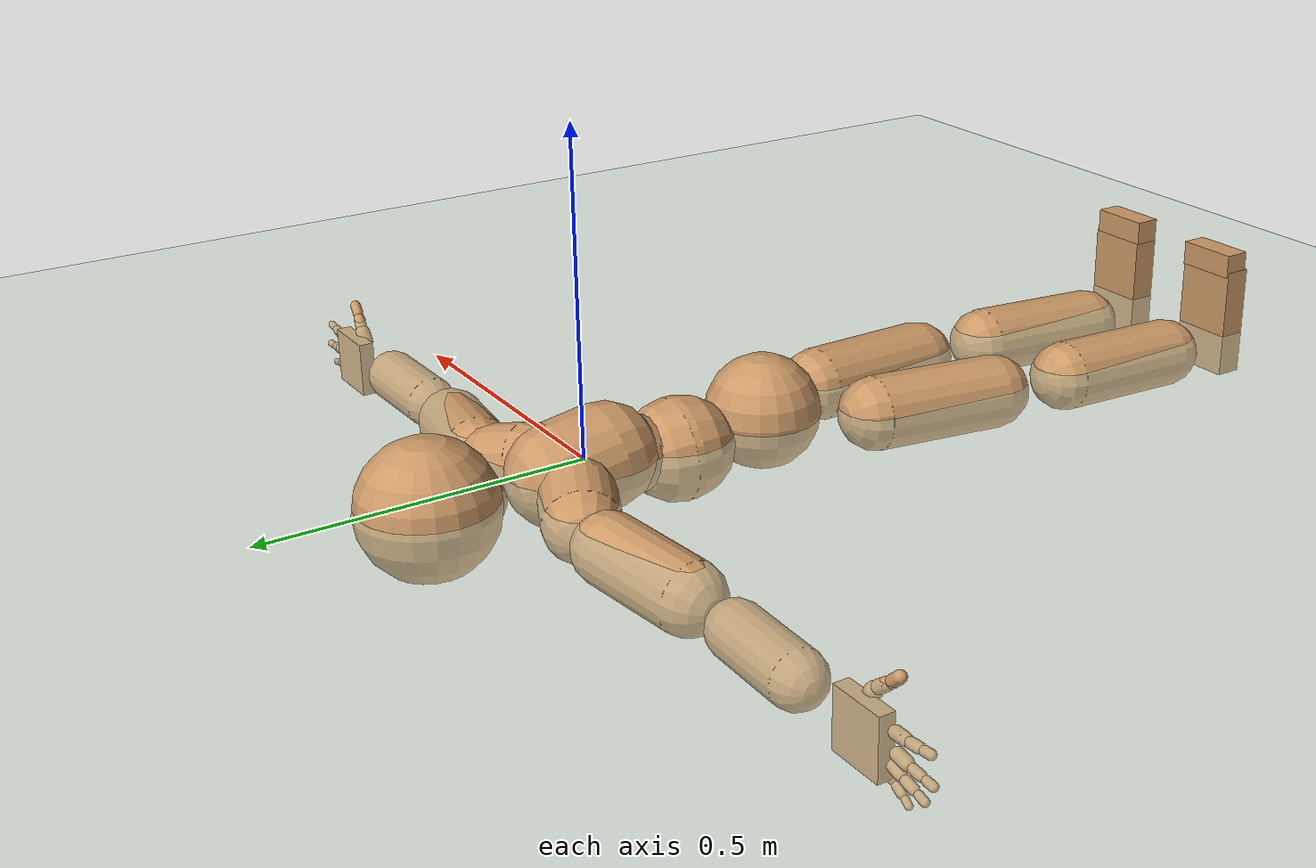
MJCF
<?xml version='1.0' encoding='utf-8'?>
<mujoco model="smplx_mapped_s110">
  <compiler coordinate="local" />
  <default>
    <joint damping="0.0" armature="0.01" stiffness="0.0" limited="true" />
    <geom conaffinity="1" condim="3" contype="7" margin="0.001" rgba="0.8 0.6 .4 1" />
  </default>
  <asset>
    <texture type="skybox" builtin="gradient" rgb1=".4 .5 .6" rgb2="0 0 0" width="100" height="100" />
    <texture builtin="flat" height="1278" mark="cross" markrgb="1 1 1" name="texgeom" random="0.01" rgb1="0.8 0.6 0.4" rgb2="0.8 0.6 0.4" type="cube" width="127" />
    <texture builtin="checker" height="100" name="texplane" rgb1="0 0 0" rgb2="0.8 0.8 0.8" type="2d" width="100" />
    <material name="MatPlane" reflectance="0.5" shininess="1" specular="1" texrepeat="60 60" texture="texplane" />
    <material name="geom" texture="texgeom" texuniform="true" />
  </asset>
  <worldbody>
    <light cutoff="100" diffuse="1 1 1" dir="-0 0 -1.3" directional="true" exponent="1" pos="0 0 1.3" specular=".1 .1 .1" />
    <geom conaffinity="1" condim="3" name="floor" pos="0 0 0" rgba="0.8 0.9 0.8 1" size="100 100 .2" type="plane" material="MatPlane" />
    <body name="Pelvis" pos="0.0006 -0.3115 0.0031">
      <freejoint name="Pelvis" />
      <geom type="sphere" contype="1" conaffinity="1" density="4629.6296296296305" size="0.09" pos="0.0000 0.0000 0.0000" name="Pelvis" />
      <body name="L_Hip" pos="0.0666 -0.0820 -0.0142">
        <joint name="L_Hip_x" type="hinge" pos="0 0 0" axis="1 0 0" stiffness="800" damping="80" armature="0.02" range="-180.00 180.00" />
        <joint name="L_Hip_y" type="hinge" pos="0 0 0" axis="0 1 0" stiffness="800" damping="80" armature="0.02" range="-180.00 180.00" />
        <joint name="L_Hip_z" type="hinge" pos="0 0 0" axis="0 0 1" stiffness="800" damping="80" armature="0.02" range="-180.00 180.00" />
        <geom type="capsule" contype="1" conaffinity="1" density="2040.816327" fromto="0.0071 -0.0730 -0.0027 0.0285 -0.2921 -0.0109" size="0.059" />
        <body name="L_Knee" pos="0.0357 -0.3652 -0.0136">
          <joint name="L_Knee_x" type="hinge" pos="0 0 0" axis="1 0 0" stiffness="800" damping="80" armature="0.02" range="-180.00 180.00" />
          <joint name="L_Knee_y" type="hinge" pos="0 0 0" axis="0 1 0" stiffness="800" damping="80" armature="0.02" range="-180.00 180.00" />
          <joint name="L_Knee_z" type="hinge" pos="0 0 0" axis="0 0 1" stiffness="800" damping="80" armature="0.02" range="-180.00 180.00" />
          <geom type="capsule" contype="1" conaffinity="1" density="1234.567901" fromto="-0.0013 -0.0767 -0.0036 -0.0051 -0.3068 -0.0144" size="0.0564" />
          <body name="L_Ankle" pos="-0.0064 -0.3835 -0.0180">
            <joint name="L_Ankle_x" type="hinge" pos="0 0 0" axis="1 0 0" stiffness="800" damping="80" armature="0.02" range="-180.00 180.00" />
            <joint name="L_Ankle_y" type="hinge" pos="0 0 0" axis="0 1 0" stiffness="800" damping="80" armature="0.02" range="-180.00 180.00" />
            <joint name="L_Ankle_z" type="hinge" pos="0 0 0" axis="0 0 1" stiffness="800" damping="80" armature="0.02" range="-180.00 180.00" />
            <geom type="box" contype="1" conaffinity="1" density="1000" pos="0.0115 -0.0234 0.0566" size="0.0502 0.0216 0.0909" quat="1.0000 0.0000 0.0000 0.0000" />
            <body name="L_Toe" pos="0.0201 -0.0445 0.1067">
              <joint name="L_Toe_x" type="hinge" pos="0 0 0" axis="1 0 0" stiffness="500" damping="50" armature="0.02" range="-180.00 180.00" />
              <joint name="L_Toe_y" type="hinge" pos="0 0 0" axis="0 1 0" stiffness="500" damping="50" armature="0.02" range="-180.00 180.00" />
              <joint name="L_Toe_z" type="hinge" pos="0 0 0" axis="0 0 1" stiffness="500" damping="50" armature="0.02" range="-180.00 180.00" />
              <geom type="box" contype="1" conaffinity="1" density="1000" pos="-0.0115 0.0227 0.0576" size="0.0493 0.0209 0.0194" quat="1.0000 0.0000 0.0000 0.0000" />
            </body>
          </body>
        </body>
      </body>
      <body name="R_Hip" pos="-0.0659 -0.0882 -0.0152">
        <joint name="R_Hip_x" type="hinge" pos="0 0 0" axis="1 0 0" stiffness="800" damping="80" armature="0.02" range="-180.00 180.00" />
        <joint name="R_Hip_y" type="hinge" pos="0 0 0" axis="0 1 0" stiffness="800" damping="80" armature="0.02" range="-180.00 180.00" />
        <joint name="R_Hip_z" type="hinge" pos="0 0 0" axis="0 0 1" stiffness="800" damping="80" armature="0.02" range="-180.00 180.00" />
        <geom type="capsule" contype="1" conaffinity="1" density="2040.816327" fromto="-0.0079 -0.0722 -0.0017 -0.0318 -0.2889 -0.0066" size="0.0588" />
        <body name="R_Knee" pos="-0.0397 -0.3611 -0.0083">
          <joint name="R_Knee_x" type="hinge" pos="0 0 0" axis="1 0 0" stiffness="800" damping="80" armature="0.02" range="-180.00 180.00" />
          <joint name="R_Knee_y" type="hinge" pos="0 0 0" axis="0 1 0" stiffness="800" damping="80" armature="0.02" range="-180.00 180.00" />
          <joint name="R_Knee_z" type="hinge" pos="0 0 0" axis="0 0 1" stiffness="800" damping="80" armature="0.02" range="-180.00 180.00" />
          <geom type="capsule" contype="1" conaffinity="1" density="1234.567901" fromto="0.0004 -0.0750 -0.0027 0.0015 -0.3001 -0.0110" size="0.0564" />
          <body name="R_Ankle" pos="0.0019 -0.3752 -0.0137">
            <joint name="R_Ankle_x" type="hinge" pos="0 0 0" axis="1 0 0" stiffness="800" damping="80" armature="0.02" range="-180.00 180.00" />
            <joint name="R_Ankle_y" type="hinge" pos="0 0 0" axis="0 1 0" stiffness="800" damping="80" armature="0.02" range="-180.00 180.00" />
            <joint name="R_Ankle_z" type="hinge" pos="0 0 0" axis="0 0 1" stiffness="800" damping="80" armature="0.02" range="-180.00 180.00" />
            <geom type="box" contype="1" conaffinity="1" density="1000" pos="-0.0091 -0.0250 0.0535" size="0.0502 0.0216 0.0909" quat="1.0000 0.0000 0.0000 0.0000" />
            <body name="R_Toe" pos="-0.0161 -0.0479 0.1003">
              <joint name="R_Toe_x" type="hinge" pos="0 0 0" axis="1 0 0" stiffness="500" damping="50" armature="0.02" range="-180.00 180.00" />
              <joint name="R_Toe_y" type="hinge" pos="0 0 0" axis="0 1 0" stiffness="500" damping="50" armature="0.02" range="-180.00 180.00" />
              <joint name="R_Toe_z" type="hinge" pos="0 0 0" axis="0 0 1" stiffness="500" damping="50" armature="0.02" range="-180.00 180.00" />
              <geom type="box" contype="1" conaffinity="1" density="1000" pos="0.0091 0.0243 0.0545" size="0.0493 0.0209 0.0194" quat="1.0000 0.0000 0.0000 0.0000" />
            </body>
          </body>
        </body>
      </body>
      <body name="Torso" pos="-0.0053 0.0938 -0.0223">
        <joint name="Torso_x" type="hinge" pos="0 0 0" axis="1 0 0" stiffness="1000" damping="100" armature="0.02" range="-180.00 180.00" />
        <joint name="Torso_y" type="hinge" pos="0 0 0" axis="0 1 0" stiffness="1000" damping="100" armature="0.02" range="-180.00 180.00" />
        <joint name="Torso_z" type="hinge" pos="0 0 0" axis="0 0 1" stiffness="1000" damping="100" armature="0.02" range="-180.00 180.00" />
        <geom type="capsule" contype="1" conaffinity="1" density="1100" fromto="0.0041 0.0518 -0.0026 0.0050 0.0634 -0.0032" size="0.08" />
        <body name="Spine" pos="0.0091 0.1152 -0.0058">
          <joint name="Spine_x" type="hinge" pos="0 0 0" axis="1 0 0" stiffness="1000" damping="100" armature="0.02" range="-180.00 180.00" />
          <joint name="Spine_y" type="hinge" pos="0 0 0" axis="0 1 0" stiffness="1000" damping="100" armature="0.02" range="-180.00 180.00" />
          <joint name="Spine_z" type="hinge" pos="0 0 0" axis="0 0 1" stiffness="1000" damping="100" armature="0.02" range="-180.00 180.00" />
          <geom type="capsule" contype="1" conaffinity="1" density="1100" fromto="-0.0021 0.0197 0.0128 -0.0026 0.0240 0.0156" size="0.06" />
          <body name="Chest" pos="-0.0046 0.0437 0.0284">
            <joint name="Chest_x" type="hinge" pos="0 0 0" axis="1 0 0" stiffness="1000" damping="100" armature="0.02" range="-180.00 180.00" />
            <joint name="Chest_y" type="hinge" pos="0 0 0" axis="0 1 0" stiffness="1000" damping="100" armature="0.02" range="-180.00 180.00" />
            <joint name="Chest_z" type="hinge" pos="0 0 0" axis="0 0 1" stiffness="1000" damping="100" armature="0.02" range="-180.00 180.00" />
            <geom type="capsule" contype="1" conaffinity="1" density="1100" fromto="-0.0006 0.0256 -0.0038 -0.0023 0.1026 -0.0153" size="0.08" />
            <body name="Neck" pos="-0.0058 0.1764 -0.0304">
              <joint name="Neck_x" type="hinge" pos="0 0 0" axis="1 0 0" stiffness="500" damping="50" armature="0.02" range="-180.00 180.00" />
              <joint name="Neck_y" type="hinge" pos="0 0 0" axis="0 1 0" stiffness="500" damping="50" armature="0.02" range="-180.00 180.00" />
              <joint name="Neck_z" type="hinge" pos="0 0 0" axis="0 0 1" stiffness="500" damping="50" armature="0.02" range="-180.00 180.00" />
              <geom type="capsule" contype="1" conaffinity="1" density="1000" fromto="0.0040 0.0577 0.0061 0.0049 0.0705 0.0075" size="0.0437" />
              <body name="Head" pos="0.0089 0.1281 0.0136">
                <joint name="Head_x" type="hinge" pos="0 0 0" axis="1 0 0" stiffness="500" damping="50" armature="0.02" range="-180.00 180.00" />
                <joint name="Head_y" type="hinge" pos="0 0 0" axis="0 1 0" stiffness="500" damping="50" armature="0.02" range="-180.00 180.00" />
                <joint name="Head_z" type="hinge" pos="0 0 0" axis="0 0 1" stiffness="500" damping="50" armature="0.02" range="-180.00 180.00" />
                <geom type="sphere" contype="1" conaffinity="1" density="1000" size="0.1054" pos="0.0000 0.0000 0.0000" name="Head" />
              </body>
            </body>
            <body name="L_Thorax" pos="0.0512 0.1059 -0.0103">
              <joint name="L_Thorax_x" type="hinge" pos="0 0 0" axis="1 0 0" stiffness="500" damping="50" armature="0.02" range="-180.00 180.00" />
              <joint name="L_Thorax_y" type="hinge" pos="0 0 0" axis="0 1 0" stiffness="500" damping="50" armature="0.02" range="-180.00 180.00" />
              <joint name="L_Thorax_z" type="hinge" pos="0 0 0" axis="0 0 1" stiffness="500" damping="50" armature="0.02" range="-180.00 180.00" />
              <geom type="capsule" contype="1" conaffinity="1" density="1000" fromto="0.0179 0.0081 -0.0053 0.0718 0.0322 -0.0212" size="0.0564" />
              <body name="L_Shoulder" pos="0.0897 0.0403 -0.0265">
                <joint name="L_Shoulder_x" type="hinge" pos="0 0 0" axis="1 0 0" stiffness="500" damping="50" armature="0.02" range="-180.00 180.00" />
                <joint name="L_Shoulder_y" type="hinge" pos="0 0 0" axis="0 1 0" stiffness="500" damping="50" armature="0.02" range="-180.00 180.00" />
                <joint name="L_Shoulder_z" type="hinge" pos="0 0 0" axis="0 0 1" stiffness="500" damping="50" armature="0.02" range="-180.00 180.00" />
                <geom type="capsule" contype="1" conaffinity="1" density="1000" fromto="0.0542 -0.0110 -0.0058 0.2169 -0.0441 -0.0231" size="0.0533" />
                <body name="L_Elbow" pos="0.2711 -0.0552 -0.0289">
                  <joint name="L_Elbow_x" type="hinge" pos="0 0 0" axis="1 0 0" stiffness="500" damping="50" armature="0.02" range="-180.00 180.00" />
                  <joint name="L_Elbow_y" type="hinge" pos="0 0 0" axis="0 1 0" stiffness="500" damping="50" armature="0.02" range="-180.00 180.00" />
                  <joint name="L_Elbow_z" type="hinge" pos="0 0 0" axis="0 0 1" stiffness="500" damping="50" armature="0.02" range="-180.00 180.00" />
                  <geom type="capsule" contype="1" conaffinity="1" density="1000" fromto="0.0457 0.0016 0.0011 0.1827 0.0062 0.0042" size="0.0418" />
                  <body name="L_Wrist" pos="0.252 0.0232 -0.0025">
                    <joint name="L_Wrist_x" type="hinge" pos="0 0 0" axis="1 0 0" stiffness="300" damping="30" armature="0.02" range="-180.0000 180.0000"/>
                    <joint name="L_Wrist_y" type="hinge" pos="0 0 0" axis="0 1 0" stiffness="300" damping="30" armature="0.02" range="-180.0000 180.0000"/>
                    <joint name="L_Wrist_z" type="hinge" pos="0 0 0" axis="0 0 1" stiffness="300" damping="30" armature="0.02" range="-180.0000 180.0000"/>
                    <geom type="box" density="1198.335972" pos="0.0523 -0.0013 -0.0031" size="0.0484 0.0122 0.046" quat="1.0000 0.0000 0.0000 0.0000" name="L_Wrist"/>
                    <body name="L_Index1" pos="0.1019 -0.0087 0.0194">
                      <joint name="L_Index1_x" type="hinge" pos="0 0 0" axis="1 0 0" stiffness="100" damping="10" armature="0.02" range="-180.0000 180.0000"/>
                      <joint name="L_Index1_y" type="hinge" pos="0 0 0" axis="0 1 0" stiffness="100" damping="10" armature="0.02" range="-180.0000 180.0000"/>
                      <joint name="L_Index1_z" type="hinge" pos="0 0 0" axis="0 0 1" stiffness="100" damping="10" armature="0.02" range="-180.0000 180.0000"/>
                      <geom type="capsule" contype="1" conaffinity="1" density="1000" fromto="0.0064 0.0004 0.0006 0.0256 0.0018 0.0024" size="0.0091" name="L_Index1"/>
                      <body name="L_Index2" pos="0.0319 0.0022 0.003">
                        <joint name="L_Index2_x" type="hinge" pos="0 0 0" axis="1 0 0" stiffness="100" damping="10" armature="0.02" range="-180.0000 180.0000"/>
                        <joint name="L_Index2_y" type="hinge" pos="0 0 0" axis="0 1 0" stiffness="100" damping="10" armature="0.02" range="-180.0000 180.0000"/>
                        <joint name="L_Index2_z" type="hinge" pos="0 0 0" axis="0 0 1" stiffness="100" damping="10" armature="0.02" range="-180.0000 180.0000"/>
                        <geom type="capsule" contype="1" conaffinity="1" density="1000" fromto="0.0045 -0.0005 0.0000 0.0180 -0.0019 0.0000" size="0.0076" name="L_Index2"/>
                        <body name="L_Index3" pos="0.0225 -0.0024 0.0001">
                          <joint name="L_Index3_x" type="hinge" pos="0 0 0" axis="1 0 0" stiffness="100" damping="10" armature="0.02" range="-180.0000 180.0000"/>
                          <joint name="L_Index3_y" type="hinge" pos="0 0 0" axis="0 1 0" stiffness="100" damping="10" armature="0.02" range="-180.0000 180.0000"/>
                          <joint name="L_Index3_z" type="hinge" pos="0 0 0" axis="0 0 1" stiffness="100" damping="10" armature="0.02" range="-180.0000 180.0000"/>
                          <geom type="capsule" contype="1" conaffinity="1" density="1000" fromto="0.0049 -0.0001 0.0004 0.0196 -0.0003 0.0016" size="0.0064" name="L_Index3"/>
                        </body>
                      </body>
                    </body>
                    <body name="L_Middle1" pos="0.1094 -0.0063 -0.004">
                      <joint name="L_Middle1_x" type="hinge" pos="0 0 0" axis="1 0 0" stiffness="100" damping="10" armature="0.02" range="-180.0000 180.0000"/>
                      <joint name="L_Middle1_y" type="hinge" pos="0 0 0" axis="0 1 0" stiffness="100" damping="10" armature="0.02" range="-180.0000 180.0000"/>
                      <joint name="L_Middle1_z" type="hinge" pos="0 0 0" axis="0 0 1" stiffness="100" damping="10" armature="0.02" range="-180.0000 180.0000"/>
                      <geom type="capsule" contype="1" conaffinity="1" density="1000" fromto="0.0061 0.0002 -0.0008 0.0245 0.0006 -0.0032" size="0.0094" name="L_Middle1"/>
                      <body name="L_Middle2" pos="0.0306 0.0008 -0.004">
                        <joint name="L_Middle2_x" type="hinge" pos="0 0 0" axis="1 0 0" stiffness="100" damping="10" armature="0.02" range="-180.0000 180.0000"/>
                        <joint name="L_Middle2_y" type="hinge" pos="0 0 0" axis="0 1 0" stiffness="100" damping="10" armature="0.02" range="-180.0000 180.0000"/>
                        <joint name="L_Middle2_z" type="hinge" pos="0 0 0" axis="0 0 1" stiffness="100" damping="10" armature="0.02" range="-180.0000 180.0000"/>
                        <geom type="capsule" contype="1" conaffinity="1" density="1000" fromto="0.0047 -0.0004 -0.0008 0.0188 -0.0016 -0.0033" size="0.007" name="L_Middle2"/>
                        <body name="L_Middle3" pos="0.0235 -0.002 -0.0041">
                          <joint name="L_Middle3_x" type="hinge" pos="0 0 0" axis="1 0 0" stiffness="100" damping="10" armature="0.02" range="-180.0000 180.0000"/>
                          <joint name="L_Middle3_y" type="hinge" pos="0 0 0" axis="0 1 0" stiffness="100" damping="10" armature="0.02" range="-180.0000 180.0000"/>
                          <joint name="L_Middle3_z" type="hinge" pos="0 0 0" axis="0 0 1" stiffness="100" damping="10" armature="0.02" range="-180.0000 180.0000"/>
                          <geom type="capsule" contype="1" conaffinity="1" density="1000" fromto="0.0051 -0.0000 -0.0004 0.0204 -0.0000 -0.0017" size="0.0061" name="L_Middle3"/>
                        </body>
                      </body>
                    </body>
                    <body name="L_Pinky1" pos="0.084 -0.0145 -0.0437">
                      <joint name="L_Pinky1_x" type="hinge" pos="0 0 0" axis="1 0 0" stiffness="100" damping="10" armature="0.02" range="-180.0000 180.0000"/>
                      <joint name="L_Pinky1_y" type="hinge" pos="0 0 0" axis="0 1 0" stiffness="100" damping="10" armature="0.02" range="-180.0000 180.0000"/>
                      <joint name="L_Pinky1_z" type="hinge" pos="0 0 0" axis="0 0 1" stiffness="100" damping="10" armature="0.02" range="-180.0000 180.0000"/>
                      <geom type="capsule" contype="1" conaffinity="1" density="1000" fromto="0.0031 -0.0002 -0.0024 0.0124 -0.0009 -0.0096" size="0.0067" name="L_Pinky1"/>
                      <body name="L_Pinky2" pos="0.0155 -0.0011 -0.012">
                        <joint name="L_Pinky2_x" type="hinge" pos="0 0 0" axis="1 0 0" stiffness="100" damping="10" armature="0.02" range="-180.0000 180.0000"/>
                        <joint name="L_Pinky2_y" type="hinge" pos="0 0 0" axis="0 1 0" stiffness="100" damping="10" armature="0.02" range="-180.0000 180.0000"/>
                        <joint name="L_Pinky2_z" type="hinge" pos="0 0 0" axis="0 0 1" stiffness="100" damping="10" armature="0.02" range="-180.0000 180.0000"/>
                        <geom type="capsule" contype="1" conaffinity="1" density="1000" fromto="0.0031 -0.0003 -0.0022 0.0124 -0.0013 -0.0090" size="0.0065" name="L_Pinky2"/>
                        <body name="L_Pinky3" pos="0.0155 -0.0017 -0.0112">
                          <joint name="L_Pinky3_x" type="hinge" pos="0 0 0" axis="1 0 0" stiffness="100" damping="10" armature="0.02" range="-180.0000 180.0000"/>
                          <joint name="L_Pinky3_y" type="hinge" pos="0 0 0" axis="0 1 0" stiffness="100" damping="10" armature="0.02" range="-180.0000 180.0000"/>
                          <joint name="L_Pinky3_z" type="hinge" pos="0 0 0" axis="0 0 1" stiffness="100" damping="10" armature="0.02" range="-180.0000 180.0000"/>
                          <geom type="capsule" contype="1" conaffinity="1" density="1000" fromto="0.0035 0.0001 -0.0018 0.0140 0.0003 -0.0074" size="0.005" name="L_Pinky3"/>
                        </body>
                      </body>
                    </body>
                    <body name="L_Ring1" pos="0.0974 -0.0093 -0.0273">
                      <joint name="L_Ring1_x" type="hinge" pos="0 0 0" axis="1 0 0" stiffness="100" damping="10" armature="0.02" range="-180.0000 180.0000"/>
                      <joint name="L_Ring1_y" type="hinge" pos="0 0 0" axis="0 1 0" stiffness="100" damping="10" armature="0.02" range="-180.0000 180.0000"/>
                      <joint name="L_Ring1_z" type="hinge" pos="0 0 0" axis="0 0 1" stiffness="100" damping="10" armature="0.02" range="-180.0000 180.0000"/>
                      <geom type="capsule" contype="1" conaffinity="1" density="1000" fromto="0.0056 0.0003 -0.0011 0.0224 0.0012 -0.0042" size="0.008" name="L_Ring1"/>
                      <body name="L_Ring2" pos="0.028 0.0015 -0.0053">
                        <joint name="L_Ring2_x" type="hinge" pos="0 0 0" axis="1 0 0" stiffness="100" damping="10" armature="0.02" range="-180.0000 180.0000"/>
                        <joint name="L_Ring2_y" type="hinge" pos="0 0 0" axis="0 1 0" stiffness="100" damping="10" armature="0.02" range="-180.0000 180.0000"/>
                        <joint name="L_Ring2_z" type="hinge" pos="0 0 0" axis="0 0 1" stiffness="100" damping="10" armature="0.02" range="-180.0000 180.0000"/>
                        <geom type="capsule" contype="1" conaffinity="1" density="1000" fromto="0.0046 -0.0003 -0.0014 0.0183 -0.0012 -0.0057" size="0.0074" name="L_Ring2"/>
                        <body name="L_Ring3" pos="0.0228 -0.0015 -0.0071">
                          <joint name="L_Ring3_x" type="hinge" pos="0 0 0" axis="1 0 0" stiffness="100" damping="10" armature="0.02" range="-180.0000 180.0000"/>
                          <joint name="L_Ring3_y" type="hinge" pos="0 0 0" axis="0 1 0" stiffness="100" damping="10" armature="0.02" range="-180.0000 180.0000"/>
                          <joint name="L_Ring3_z" type="hinge" pos="0 0 0" axis="0 0 1" stiffness="100" damping="10" armature="0.02" range="-180.0000 180.0000"/>
                          <geom type="capsule" contype="1" conaffinity="1" density="1000" fromto="0.0050 0.0001 -0.0010 0.0199 0.0004 -0.0041" size="0.0057" name="L_Ring3"/>
                        </body>
                      </body>
                    </body>
                    <body name="L_Thumb1" pos="0.0406 -0.018 0.0256">
                      <joint name="L_Thumb1_x" type="hinge" pos="0 0 0" axis="1 0 0" stiffness="100" damping="10" armature="0.02" range="-180.0000 180.0000"/>
                      <joint name="L_Thumb1_y" type="hinge" pos="0 0 0" axis="0 1 0" stiffness="100" damping="10" armature="0.02" range="-180.0000 180.0000"/>
                      <joint name="L_Thumb1_z" type="hinge" pos="0 0 0" axis="0 0 1" stiffness="100" damping="10" armature="0.02" range="-180.0000 180.0000"/>
                      <geom type="capsule" contype="1" conaffinity="1" density="1000" fromto="0.0034 0.0002 0.0050 0.0136 0.0008 0.0200" size="0.012" name="L_Thumb1"/>
                      <body name="L_Thumb2" pos="0.017 0.001 0.025">
                        <joint name="L_Thumb2_x" type="hinge" pos="0 0 0" axis="1 0 0" stiffness="100" damping="10" armature="0.02" range="-180.0000 180.0000"/>
                        <joint name="L_Thumb2_y" type="hinge" pos="0 0 0" axis="0 1 0" stiffness="100" damping="10" armature="0.02" range="-180.0000 180.0000"/>
                        <joint name="L_Thumb2_z" type="hinge" pos="0 0 0" axis="0 0 1" stiffness="100" damping="10" armature="0.02" range="-180.0000 180.0000"/>
                        <geom type="capsule" contype="1" conaffinity="1" density="1000" fromto="0.0041 -0.0010 0.0031 0.0164 -0.0041 0.0124" size="0.0095" name="L_Thumb2"/>
                        <body name="L_Thumb3" pos="0.0205 -0.0052 0.0155">
                          <joint name="L_Thumb3_x" type="hinge" pos="0 0 0" axis="1 0 0" stiffness="100" damping="10" armature="0.02" range="-180.0000 180.0000"/>
                          <joint name="L_Thumb3_y" type="hinge" pos="0 0 0" axis="0 1 0" stiffness="100" damping="10" armature="0.02" range="-180.0000 180.0000"/>
                          <joint name="L_Thumb3_z" type="hinge" pos="0 0 0" axis="0 0 1" stiffness="100" damping="10" armature="0.02" range="-180.0000 180.0000"/>
                          <geom type="capsule" contype="1" conaffinity="1" density="1000" fromto="0.0045 -0.0006 0.0035 0.0180 -0.0025 0.0140" size="0.0087" name="L_Thumb3"/>
                        </body>
                      </body>
                    </body>
                  </body>
                </body>
              </body>
            </body>
            <body name="R_Thorax" pos="-0.0540 0.1023 -0.0164">
              <joint name="R_Thorax_x" type="hinge" pos="0 0 0" axis="1 0 0" stiffness="500" damping="50" armature="0.02" range="-180.00 180.00" />
              <joint name="R_Thorax_y" type="hinge" pos="0 0 0" axis="0 1 0" stiffness="500" damping="50" armature="0.02" range="-180.00 180.00" />
              <joint name="R_Thorax_z" type="hinge" pos="0 0 0" axis="0 0 1" stiffness="500" damping="50" armature="0.02" range="-180.00 180.00" />
              <geom type="capsule" contype="1" conaffinity="1" density="1000" fromto="-0.0194 0.0085 -0.0039 -0.0774 0.0339 -0.0157" size="0.0576" />
              <body name="R_Shoulder" pos="-0.0968 0.0424 -0.0196">
                <joint name="R_Shoulder_x" type="hinge" pos="0 0 0" axis="1 0 0" stiffness="500" damping="50" armature="0.02" range="-180.00 180.00" />
                <joint name="R_Shoulder_y" type="hinge" pos="0 0 0" axis="0 1 0" stiffness="500" damping="50" armature="0.02" range="-180.00 180.00" />
                <joint name="R_Shoulder_z" type="hinge" pos="0 0 0" axis="0 0 1" stiffness="500" damping="50" armature="0.02" range="-180.00 180.00" />
                <geom type="capsule" contype="1" conaffinity="1" density="1000" fromto="-0.0522 -0.0100 -0.0044 -0.2090 -0.0400 -0.0178" size="0.0538" />
                <body name="R_Elbow" pos="-0.2612 -0.0500 -0.0222">
                  <joint name="R_Elbow_x" type="hinge" pos="0 0 0" axis="1 0 0" stiffness="500" damping="50" armature="0.02" range="-180.00 180.00" />
                  <joint name="R_Elbow_y" type="hinge" pos="0 0 0" axis="0 1 0" stiffness="500" damping="50" armature="0.02" range="-180.00 180.00" />
                  <joint name="R_Elbow_z" type="hinge" pos="0 0 0" axis="0 0 1" stiffness="500" damping="50" armature="0.02" range="-180.00 180.00" />
                  <geom type="capsule" contype="1" conaffinity="1" density="1000" fromto="-0.0458 0.0007 -0.0007 -0.1833 0.0026 -0.0030" size="0.042" />
                  <body name="R_Wrist" pos="-0.2493 -0.0045 -0.0153">
                    <joint name="R_Wrist_x" type="hinge" pos="0 0 0" axis="1 0 0" stiffness="300" damping="30" armature="0.02" range="-180.0000 180.0000"/>
                    <joint name="R_Wrist_y" type="hinge" pos="0 0 0" axis="0 1 0" stiffness="300" damping="30" armature="0.02" range="-180.0000 180.0000"/>
                    <joint name="R_Wrist_z" type="hinge" pos="0 0 0" axis="0 0 1" stiffness="300" damping="30" armature="0.02" range="-180.0000 180.0000"/>
                    <geom type="box" density="1230.822844" pos="-0.0537 -0.0044 -0.0029" size="0.0454 0.0122 0.046" quat="1.0000 0.0000 0.0000 0.0000" name="R_Wrist"/>
                    <body name="R_Index1" pos="-0.0999 -0.0118 0.0196">
                      <joint name="R_Index1_x" type="hinge" pos="0 0 0" axis="1 0 0" stiffness="100" damping="10" armature="0.02" range="-180.0000 180.0000"/>
                      <joint name="R_Index1_y" type="hinge" pos="0 0 0" axis="0 1 0" stiffness="100" damping="10" armature="0.02" range="-180.0000 180.0000"/>
                      <joint name="R_Index1_z" type="hinge" pos="0 0 0" axis="0 0 1" stiffness="100" damping="10" armature="0.02" range="-180.0000 180.0000"/>
                      <geom type="capsule" contype="1" conaffinity="1" density="1000" fromto="-0.0064 0.0004 0.0006 -0.0256 0.0018 0.0024" size="0.0091" name="R_Index1"/>
                      <body name="R_Index2" pos="-0.0319 0.0022 0.003">
                        <joint name="R_Index2_x" type="hinge" pos="0 0 0" axis="1 0 0" stiffness="100" damping="10" armature="0.02" range="-180.0000 180.0000"/>
                        <joint name="R_Index2_y" type="hinge" pos="0 0 0" axis="0 1 0" stiffness="100" damping="10" armature="0.02" range="-180.0000 180.0000"/>
                        <joint name="R_Index2_z" type="hinge" pos="0 0 0" axis="0 0 1" stiffness="100" damping="10" armature="0.02" range="-180.0000 180.0000"/>
                        <geom type="capsule" contype="1" conaffinity="1" density="1000" fromto="-0.0045 -0.0005 0.0000 -0.0180 -0.0019 0.0000" size="0.0076" name="R_Index2"/>
                        <body name="R_Index3" pos="-0.0225 -0.0023 0.0001">
                          <joint name="R_Index3_x" type="hinge" pos="0 0 0" axis="1 0 0" stiffness="100" damping="10" armature="0.02" range="-180.0000 180.0000"/>
                          <joint name="R_Index3_y" type="hinge" pos="0 0 0" axis="0 1 0" stiffness="100" damping="10" armature="0.02" range="-180.0000 180.0000"/>
                          <joint name="R_Index3_z" type="hinge" pos="0 0 0" axis="0 0 1" stiffness="100" damping="10" armature="0.02" range="-180.0000 180.0000"/>
                          <geom type="capsule" contype="1" conaffinity="1" density="1000" fromto="-0.0041 -0.0001 0.0004 -0.0164 -0.0003 0.0016" size="0.0067" name="R_Index3"/>
                        </body>
                      </body>
                    </body>
                    <body name="R_Middle1" pos="-0.1074 -0.0094 -0.0037">
                      <joint name="R_Middle1_x" type="hinge" pos="0 0 0" axis="1 0 0" stiffness="100" damping="10" armature="0.02" range="-180.0000 180.0000"/>
                      <joint name="R_Middle1_y" type="hinge" pos="0 0 0" axis="0 1 0" stiffness="100" damping="10" armature="0.02" range="-180.0000 180.0000"/>
                      <joint name="R_Middle1_z" type="hinge" pos="0 0 0" axis="0 0 1" stiffness="100" damping="10" armature="0.02" range="-180.0000 180.0000"/>
                      <geom type="capsule" contype="1" conaffinity="1" density="1000" fromto="-0.0061 0.0002 -0.0008 -0.0245 0.0006 -0.0032" size="0.0094" name="R_Middle1"/>
                      <body name="R_Middle2" pos="-0.0306 0.0008 -0.004">
                        <joint name="R_Middle2_x" type="hinge" pos="0 0 0" axis="1 0 0" stiffness="100" damping="10" armature="0.02" range="-180.0000 180.0000"/>
                        <joint name="R_Middle2_y" type="hinge" pos="0 0 0" axis="0 1 0" stiffness="100" damping="10" armature="0.02" range="-180.0000 180.0000"/>
                        <joint name="R_Middle2_z" type="hinge" pos="0 0 0" axis="0 0 1" stiffness="100" damping="10" armature="0.02" range="-180.0000 180.0000"/>
                        <geom type="capsule" contype="1" conaffinity="1" density="1000" fromto="-0.0047 -0.0004 -0.0008 -0.0188 -0.0016 -0.0033" size="0.007" name="R_Middle2"/>
                        <body name="R_Middle3" pos="-0.0235 -0.002 -0.0041">
                          <joint name="R_Middle3_x" type="hinge" pos="0 0 0" axis="1 0 0" stiffness="100" damping="10" armature="0.02" range="-180.0000 180.0000"/>
                          <joint name="R_Middle3_y" type="hinge" pos="0 0 0" axis="0 1 0" stiffness="100" damping="10" armature="0.02" range="-180.0000 180.0000"/>
                          <joint name="R_Middle3_z" type="hinge" pos="0 0 0" axis="0 0 1" stiffness="100" damping="10" armature="0.02" range="-180.0000 180.0000"/>
                          <geom type="capsule" contype="1" conaffinity="1" density="1000" fromto="-0.0043 -0.0000 -0.0004 -0.0172 -0.0000 -0.0017" size="0.0064" name="R_Middle3"/>
                        </body>
                      </body>
                    </body>
                    <body name="R_Pinky1" pos="-0.082 -0.0176 -0.0435">
                      <joint name="R_Pinky1_x" type="hinge" pos="0 0 0" axis="1 0 0" stiffness="100" damping="10" armature="0.02" range="-180.0000 180.0000"/>
                      <joint name="R_Pinky1_y" type="hinge" pos="0 0 0" axis="0 1 0" stiffness="100" damping="10" armature="0.02" range="-180.0000 180.0000"/>
                      <joint name="R_Pinky1_z" type="hinge" pos="0 0 0" axis="0 0 1" stiffness="100" damping="10" armature="0.02" range="-180.0000 180.0000"/>
                      <geom type="capsule" contype="1" conaffinity="1" density="1000" fromto="-0.0031 -0.0002 -0.0024 -0.0124 -0.0009 -0.0096" size="0.0067" name="R_Pinky1"/>
                      <body name="R_Pinky2" pos="-0.0155 -0.0011 -0.012">
                        <joint name="R_Pinky2_x" type="hinge" pos="0 0 0" axis="1 0 0" stiffness="100" damping="10" armature="0.02" range="-180.0000 180.0000"/>
                        <joint name="R_Pinky2_y" type="hinge" pos="0 0 0" axis="0 1 0" stiffness="100" damping="10" armature="0.02" range="-180.0000 180.0000"/>
                        <joint name="R_Pinky2_z" type="hinge" pos="0 0 0" axis="0 0 1" stiffness="100" damping="10" armature="0.02" range="-180.0000 180.0000"/>
                        <geom type="capsule" contype="1" conaffinity="1" density="1000" fromto="-0.0031 -0.0003 -0.0022 -0.0124 -0.0013 -0.0090" size="0.0065" name="R_Pinky2"/>
                        <body name="R_Pinky3" pos="-0.0155 -0.0017 -0.0112">
                          <joint name="R_Pinky3_x" type="hinge" pos="0 0 0" axis="1 0 0" stiffness="100" damping="10" armature="0.02" range="-180.0000 180.0000"/>
                          <joint name="R_Pinky3_y" type="hinge" pos="0 0 0" axis="0 1 0" stiffness="100" damping="10" armature="0.02" range="-180.0000 180.0000"/>
                          <joint name="R_Pinky3_z" type="hinge" pos="0 0 0" axis="0 0 1" stiffness="100" damping="10" armature="0.02" range="-180.0000 180.0000"/>
                          <geom type="capsule" contype="1" conaffinity="1" density="1000" fromto="-0.0027 0.0001 -0.0018 -0.0108 0.0003 -0.0074" size="0.0052" name="R_Pinky3"/>
                        </body>
                      </body>
                    </body>
                    <body name="R_Ring1" pos="-0.0954 -0.0124 -0.0271">
                      <joint name="R_Ring1_x" type="hinge" pos="0 0 0" axis="1 0 0" stiffness="100" damping="10" armature="0.02" range="-180.0000 180.0000"/>
                      <joint name="R_Ring1_y" type="hinge" pos="0 0 0" axis="0 1 0" stiffness="100" damping="10" armature="0.02" range="-180.0000 180.0000"/>
                      <joint name="R_Ring1_z" type="hinge" pos="0 0 0" axis="0 0 1" stiffness="100" damping="10" armature="0.02" range="-180.0000 180.0000"/>
                      <geom type="capsule" contype="1" conaffinity="1" density="1000" fromto="-0.0056 0.0003 -0.0011 -0.0224 0.0012 -0.0042" size="0.008" name="R_Ring1"/>
                      <body name="R_Ring2" pos="-0.028 0.0015 -0.0053">
                        <joint name="R_Ring2_x" type="hinge" pos="0 0 0" axis="1 0 0" stiffness="100" damping="10" armature="0.02" range="-180.0000 180.0000"/>
                        <joint name="R_Ring2_y" type="hinge" pos="0 0 0" axis="0 1 0" stiffness="100" damping="10" armature="0.02" range="-180.0000 180.0000"/>
                        <joint name="R_Ring2_z" type="hinge" pos="0 0 0" axis="0 0 1" stiffness="100" damping="10" armature="0.02" range="-180.0000 180.0000"/>
                        <geom type="capsule" contype="1" conaffinity="1" density="1000" fromto="-0.0046 -0.0003 -0.0014 -0.0183 -0.0012 -0.0057" size="0.0074" name="R_Ring2"/>
                        <body name="R_Ring3" pos="-0.0228 -0.0015 -0.0071">
                          <joint name="R_Ring3_x" type="hinge" pos="0 0 0" axis="1 0 0" stiffness="100" damping="10" armature="0.02" range="-180.0000 180.0000"/>
                          <joint name="R_Ring3_y" type="hinge" pos="0 0 0" axis="0 1 0" stiffness="100" damping="10" armature="0.02" range="-180.0000 180.0000"/>
                          <joint name="R_Ring3_z" type="hinge" pos="0 0 0" axis="0 0 1" stiffness="100" damping="10" armature="0.02" range="-180.0000 180.0000"/>
                          <geom type="capsule" contype="1" conaffinity="1" density="1000" fromto="-0.0042 0.0001 -0.0010 -0.0167 0.0004 -0.0041" size="0.006" name="R_Ring3"/>
                        </body>
                      </body>
                    </body>
                    <body name="R_Thumb1" pos="-0.0386 -0.0211 0.0259">
                      <joint name="R_Thumb1_x" type="hinge" pos="0 0 0" axis="1 0 0" stiffness="100" damping="10" armature="0.02" range="-180.0000 180.0000"/>
                      <joint name="R_Thumb1_y" type="hinge" pos="0 0 0" axis="0 1 0" stiffness="100" damping="10" armature="0.02" range="-180.0000 180.0000"/>
                      <joint name="R_Thumb1_z" type="hinge" pos="0 0 0" axis="0 0 1" stiffness="100" damping="10" armature="0.02" range="-180.0000 180.0000"/>
                      <geom type="capsule" contype="1" conaffinity="1" density="1000" fromto="-0.0034 0.0002 0.0050 -0.0136 0.0008 0.0200" size="0.012" name="R_Thumb1"/>
                      <body name="R_Thumb2" pos="-0.017 0.001 0.025">
                        <joint name="R_Thumb2_x" type="hinge" pos="0 0 0" axis="1 0 0" stiffness="100" damping="10" armature="0.02" range="-180.0000 180.0000"/>
                        <joint name="R_Thumb2_y" type="hinge" pos="0 0 0" axis="0 1 0" stiffness="100" damping="10" armature="0.02" range="-180.0000 180.0000"/>
                        <joint name="R_Thumb2_z" type="hinge" pos="0 0 0" axis="0 0 1" stiffness="100" damping="10" armature="0.02" range="-180.0000 180.0000"/>
                        <geom type="capsule" contype="1" conaffinity="1" density="1000" fromto="-0.0041 -0.0010 0.0031 -0.0164 -0.0041 0.0124" size="0.0095" name="R_Thumb2"/>
                        <body name="R_Thumb3" pos="-0.0205 -0.0052 0.0155">
                          <joint name="R_Thumb3_x" type="hinge" pos="0 0 0" axis="1 0 0" stiffness="100" damping="10" armature="0.02" range="-180.0000 180.0000"/>
                          <joint name="R_Thumb3_y" type="hinge" pos="0 0 0" axis="0 1 0" stiffness="100" damping="10" armature="0.02" range="-180.0000 180.0000"/>
                          <joint name="R_Thumb3_z" type="hinge" pos="0 0 0" axis="0 0 1" stiffness="100" damping="10" armature="0.02" range="-180.0000 180.0000"/>
                          <geom type="capsule" contype="1" conaffinity="1" density="1000" fromto="-0.0037 -0.0006 0.0035 -0.0148 -0.0025 0.0140" size="0.009" name="R_Thumb3"/>
                        </body>
                      </body>
                    </body>
                  </body>
                </body>
              </body>
            </body>
          </body>
        </body>
      </body>
    </body>
  </worldbody>
  <actuator>
    <motor name="L_Hip_x" joint="L_Hip_x" gear="1" />
    <motor name="L_Hip_y" joint="L_Hip_y" gear="1" />
    <motor name="L_Hip_z" joint="L_Hip_z" gear="1" />
    <motor name="L_Knee_x" joint="L_Knee_x" gear="1" />
    <motor name="L_Knee_y" joint="L_Knee_y" gear="1" />
    <motor name="L_Knee_z" joint="L_Knee_z" gear="1" />
    <motor name="L_Ankle_x" joint="L_Ankle_x" gear="1" />
    <motor name="L_Ankle_y" joint="L_Ankle_y" gear="1" />
    <motor name="L_Ankle_z" joint="L_Ankle_z" gear="1" />
    <motor name="L_Toe_x" joint="L_Toe_x" gear="1" />
    <motor name="L_Toe_y" joint="L_Toe_y" gear="1" />
    <motor name="L_Toe_z" joint="L_Toe_z" gear="1" />
    <motor name="R_Hip_x" joint="R_Hip_x" gear="1" />
    <motor name="R_Hip_y" joint="R_Hip_y" gear="1" />
    <motor name="R_Hip_z" joint="R_Hip_z" gear="1" />
    <motor name="R_Knee_x" joint="R_Knee_x" gear="1" />
    <motor name="R_Knee_y" joint="R_Knee_y" gear="1" />
    <motor name="R_Knee_z" joint="R_Knee_z" gear="1" />
    <motor name="R_Ankle_x" joint="R_Ankle_x" gear="1" />
    <motor name="R_Ankle_y" joint="R_Ankle_y" gear="1" />
    <motor name="R_Ankle_z" joint="R_Ankle_z" gear="1" />
    <motor name="R_Toe_x" joint="R_Toe_x" gear="1" />
    <motor name="R_Toe_y" joint="R_Toe_y" gear="1" />
    <motor name="R_Toe_z" joint="R_Toe_z" gear="1" />
    <motor name="Torso_x" joint="Torso_x" gear="1" />
    <motor name="Torso_y" joint="Torso_y" gear="1" />
    <motor name="Torso_z" joint="Torso_z" gear="1" />
    <motor name="Spine_x" joint="Spine_x" gear="1" />
    <motor name="Spine_y" joint="Spine_y" gear="1" />
    <motor name="Spine_z" joint="Spine_z" gear="1" />
    <motor name="Chest_x" joint="Chest_x" gear="1" />
    <motor name="Chest_y" joint="Chest_y" gear="1" />
    <motor name="Chest_z" joint="Chest_z" gear="1" />
    <motor name="Neck_x" joint="Neck_x" gear="1" />
    <motor name="Neck_y" joint="Neck_y" gear="1" />
    <motor name="Neck_z" joint="Neck_z" gear="1" />
    <motor name="Head_x" joint="Head_x" gear="1" />
    <motor name="Head_y" joint="Head_y" gear="1" />
    <motor name="Head_z" joint="Head_z" gear="1" />
    <motor name="L_Thorax_x" joint="L_Thorax_x" gear="1" />
    <motor name="L_Thorax_y" joint="L_Thorax_y" gear="1" />
    <motor name="L_Thorax_z" joint="L_Thorax_z" gear="1" />
    <motor name="L_Shoulder_x" joint="L_Shoulder_x" gear="1" />
    <motor name="L_Shoulder_y" joint="L_Shoulder_y" gear="1" />
    <motor name="L_Shoulder_z" joint="L_Shoulder_z" gear="1" />
    <motor name="L_Elbow_x" joint="L_Elbow_x" gear="1" />
    <motor name="L_Elbow_y" joint="L_Elbow_y" gear="1" />
    <motor name="L_Elbow_z" joint="L_Elbow_z" gear="1" />
    <motor name="L_Wrist_x" joint="L_Wrist_x" gear="1" />
    <motor name="L_Wrist_y" joint="L_Wrist_y" gear="1" />
    <motor name="L_Wrist_z" joint="L_Wrist_z" gear="1" />
    <motor name="L_Index1_x" joint="L_Index1_x" gear="1" />
    <motor name="L_Index1_y" joint="L_Index1_y" gear="1" />
    <motor name="L_Index1_z" joint="L_Index1_z" gear="1" />
    <motor name="L_Index2_x" joint="L_Index2_x" gear="1" />
    <motor name="L_Index2_y" joint="L_Index2_y" gear="1" />
    <motor name="L_Index2_z" joint="L_Index2_z" gear="1" />
    <motor name="L_Index3_x" joint="L_Index3_x" gear="1" />
    <motor name="L_Index3_y" joint="L_Index3_y" gear="1" />
    <motor name="L_Index3_z" joint="L_Index3_z" gear="1" />
    <motor name="L_Middle1_x" joint="L_Middle1_x" gear="1" />
    <motor name="L_Middle1_y" joint="L_Middle1_y" gear="1" />
    <motor name="L_Middle1_z" joint="L_Middle1_z" gear="1" />
    <motor name="L_Middle2_x" joint="L_Middle2_x" gear="1" />
    <motor name="L_Middle2_y" joint="L_Middle2_y" gear="1" />
    <motor name="L_Middle2_z" joint="L_Middle2_z" gear="1" />
    <motor name="L_Middle3_x" joint="L_Middle3_x" gear="1" />
    <motor name="L_Middle3_y" joint="L_Middle3_y" gear="1" />
    <motor name="L_Middle3_z" joint="L_Middle3_z" gear="1" />
    <motor name="L_Pinky1_x" joint="L_Pinky1_x" gear="1" />
    <motor name="L_Pinky1_y" joint="L_Pinky1_y" gear="1" />
    <motor name="L_Pinky1_z" joint="L_Pinky1_z" gear="1" />
    <motor name="L_Pinky2_x" joint="L_Pinky2_x" gear="1" />
    <motor name="L_Pinky2_y" joint="L_Pinky2_y" gear="1" />
    <motor name="L_Pinky2_z" joint="L_Pinky2_z" gear="1" />
    <motor name="L_Pinky3_x" joint="L_Pinky3_x" gear="1" />
    <motor name="L_Pinky3_y" joint="L_Pinky3_y" gear="1" />
    <motor name="L_Pinky3_z" joint="L_Pinky3_z" gear="1" />
    <motor name="L_Ring1_x" joint="L_Ring1_x" gear="1" />
    <motor name="L_Ring1_y" joint="L_Ring1_y" gear="1" />
    <motor name="L_Ring1_z" joint="L_Ring1_z" gear="1" />
    <motor name="L_Ring2_x" joint="L_Ring2_x" gear="1" />
    <motor name="L_Ring2_y" joint="L_Ring2_y" gear="1" />
    <motor name="L_Ring2_z" joint="L_Ring2_z" gear="1" />
    <motor name="L_Ring3_x" joint="L_Ring3_x" gear="1" />
    <motor name="L_Ring3_y" joint="L_Ring3_y" gear="1" />
    <motor name="L_Ring3_z" joint="L_Ring3_z" gear="1" />
    <motor name="L_Thumb1_x" joint="L_Thumb1_x" gear="1" />
    <motor name="L_Thumb1_y" joint="L_Thumb1_y" gear="1" />
    <motor name="L_Thumb1_z" joint="L_Thumb1_z" gear="1" />
    <motor name="L_Thumb2_x" joint="L_Thumb2_x" gear="1" />
    <motor name="L_Thumb2_y" joint="L_Thumb2_y" gear="1" />
    <motor name="L_Thumb2_z" joint="L_Thumb2_z" gear="1" />
    <motor name="L_Thumb3_x" joint="L_Thumb3_x" gear="1" />
    <motor name="L_Thumb3_y" joint="L_Thumb3_y" gear="1" />
    <motor name="L_Thumb3_z" joint="L_Thumb3_z" gear="1" />
    <motor name="R_Thorax_x" joint="R_Thorax_x" gear="1" />
    <motor name="R_Thorax_y" joint="R_Thorax_y" gear="1" />
    <motor name="R_Thorax_z" joint="R_Thorax_z" gear="1" />
    <motor name="R_Shoulder_x" joint="R_Shoulder_x" gear="1" />
    <motor name="R_Shoulder_y" joint="R_Shoulder_y" gear="1" />
    <motor name="R_Shoulder_z" joint="R_Shoulder_z" gear="1" />
    <motor name="R_Elbow_x" joint="R_Elbow_x" gear="1" />
    <motor name="R_Elbow_y" joint="R_Elbow_y" gear="1" />
    <motor name="R_Elbow_z" joint="R_Elbow_z" gear="1" />
    <motor name="R_Wrist_x" joint="R_Wrist_x" gear="1" />
    <motor name="R_Wrist_y" joint="R_Wrist_y" gear="1" />
    <motor name="R_Wrist_z" joint="R_Wrist_z" gear="1" />
    <motor name="R_Index1_x" joint="R_Index1_x" gear="1" />
    <motor name="R_Index1_y" joint="R_Index1_y" gear="1" />
    <motor name="R_Index1_z" joint="R_Index1_z" gear="1" />
    <motor name="R_Index2_x" joint="R_Index2_x" gear="1" />
    <motor name="R_Index2_y" joint="R_Index2_y" gear="1" />
    <motor name="R_Index2_z" joint="R_Index2_z" gear="1" />
    <motor name="R_Index3_x" joint="R_Index3_x" gear="1" />
    <motor name="R_Index3_y" joint="R_Index3_y" gear="1" />
    <motor name="R_Index3_z" joint="R_Index3_z" gear="1" />
    <motor name="R_Middle1_x" joint="R_Middle1_x" gear="1" />
    <motor name="R_Middle1_y" joint="R_Middle1_y" gear="1" />
    <motor name="R_Middle1_z" joint="R_Middle1_z" gear="1" />
    <motor name="R_Middle2_x" joint="R_Middle2_x" gear="1" />
    <motor name="R_Middle2_y" joint="R_Middle2_y" gear="1" />
    <motor name="R_Middle2_z" joint="R_Middle2_z" gear="1" />
    <motor name="R_Middle3_x" joint="R_Middle3_x" gear="1" />
    <motor name="R_Middle3_y" joint="R_Middle3_y" gear="1" />
    <motor name="R_Middle3_z" joint="R_Middle3_z" gear="1" />
    <motor name="R_Pinky1_x" joint="R_Pinky1_x" gear="1" />
    <motor name="R_Pinky1_y" joint="R_Pinky1_y" gear="1" />
    <motor name="R_Pinky1_z" joint="R_Pinky1_z" gear="1" />
    <motor name="R_Pinky2_x" joint="R_Pinky2_x" gear="1" />
    <motor name="R_Pinky2_y" joint="R_Pinky2_y" gear="1" />
    <motor name="R_Pinky2_z" joint="R_Pinky2_z" gear="1" />
    <motor name="R_Pinky3_x" joint="R_Pinky3_x" gear="1" />
    <motor name="R_Pinky3_y" joint="R_Pinky3_y" gear="1" />
    <motor name="R_Pinky3_z" joint="R_Pinky3_z" gear="1" />
    <motor name="R_Ring1_x" joint="R_Ring1_x" gear="1" />
    <motor name="R_Ring1_y" joint="R_Ring1_y" gear="1" />
    <motor name="R_Ring1_z" joint="R_Ring1_z" gear="1" />
    <motor name="R_Ring2_x" joint="R_Ring2_x" gear="1" />
    <motor name="R_Ring2_y" joint="R_Ring2_y" gear="1" />
    <motor name="R_Ring2_z" joint="R_Ring2_z" gear="1" />
    <motor name="R_Ring3_x" joint="R_Ring3_x" gear="1" />
    <motor name="R_Ring3_y" joint="R_Ring3_y" gear="1" />
    <motor name="R_Ring3_z" joint="R_Ring3_z" gear="1" />
    <motor name="R_Thumb1_x" joint="R_Thumb1_x" gear="1" />
    <motor name="R_Thumb1_y" joint="R_Thumb1_y" gear="1" />
    <motor name="R_Thumb1_z" joint="R_Thumb1_z" gear="1" />
    <motor name="R_Thumb2_x" joint="R_Thumb2_x" gear="1" />
    <motor name="R_Thumb2_y" joint="R_Thumb2_y" gear="1" />
    <motor name="R_Thumb2_z" joint="R_Thumb2_z" gear="1" />
    <motor name="R_Thumb3_x" joint="R_Thumb3_x" gear="1" />
    <motor name="R_Thumb3_y" joint="R_Thumb3_y" gear="1" />
    <motor name="R_Thumb3_z" joint="R_Thumb3_z" gear="1" />
  </actuator>
  <contact />
  <sensor />
  <size njmax="700" nconmax="700" />
</mujoco>
